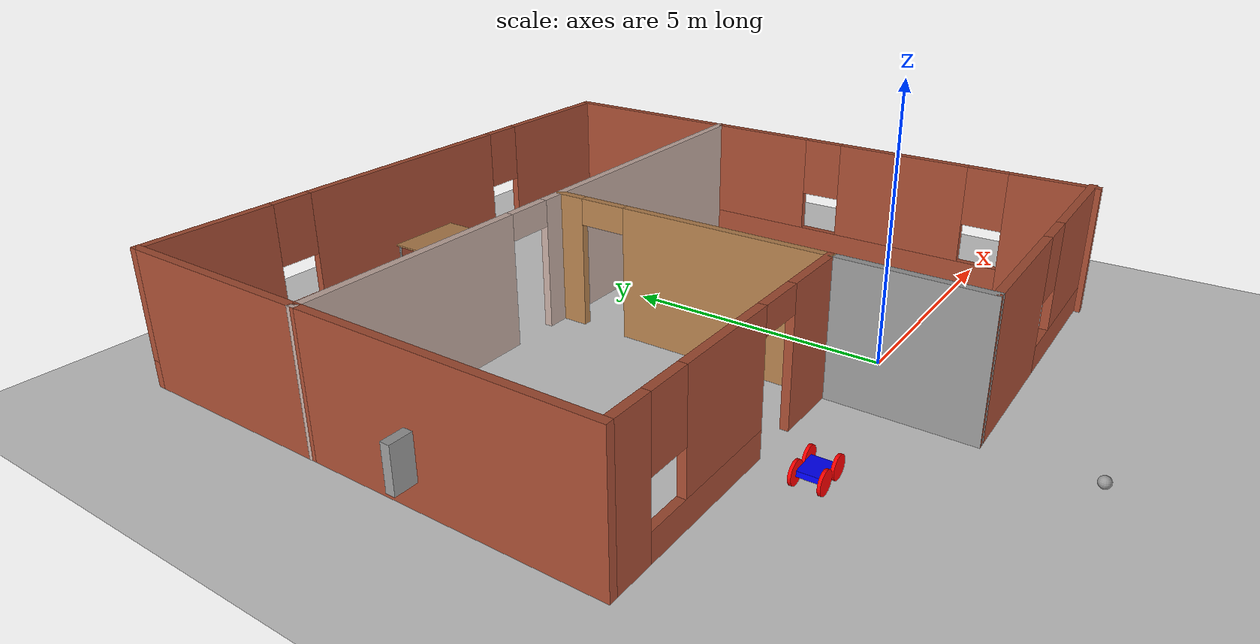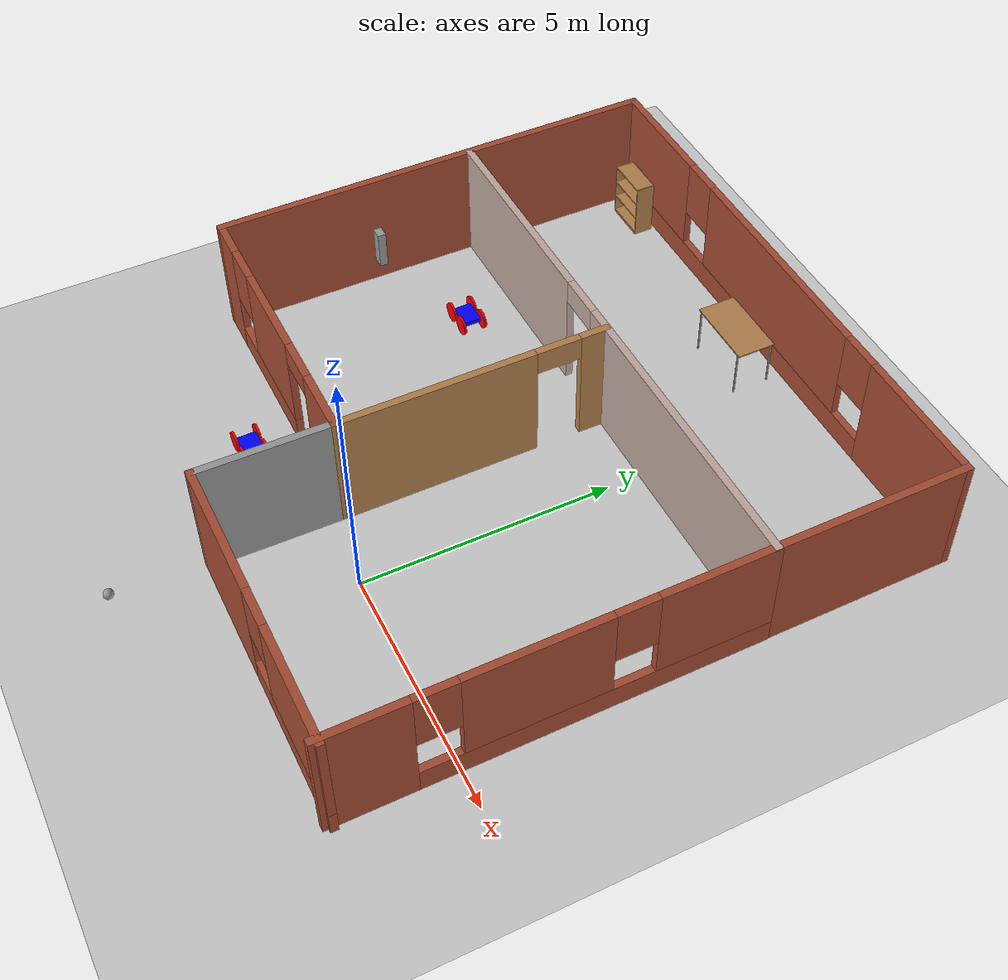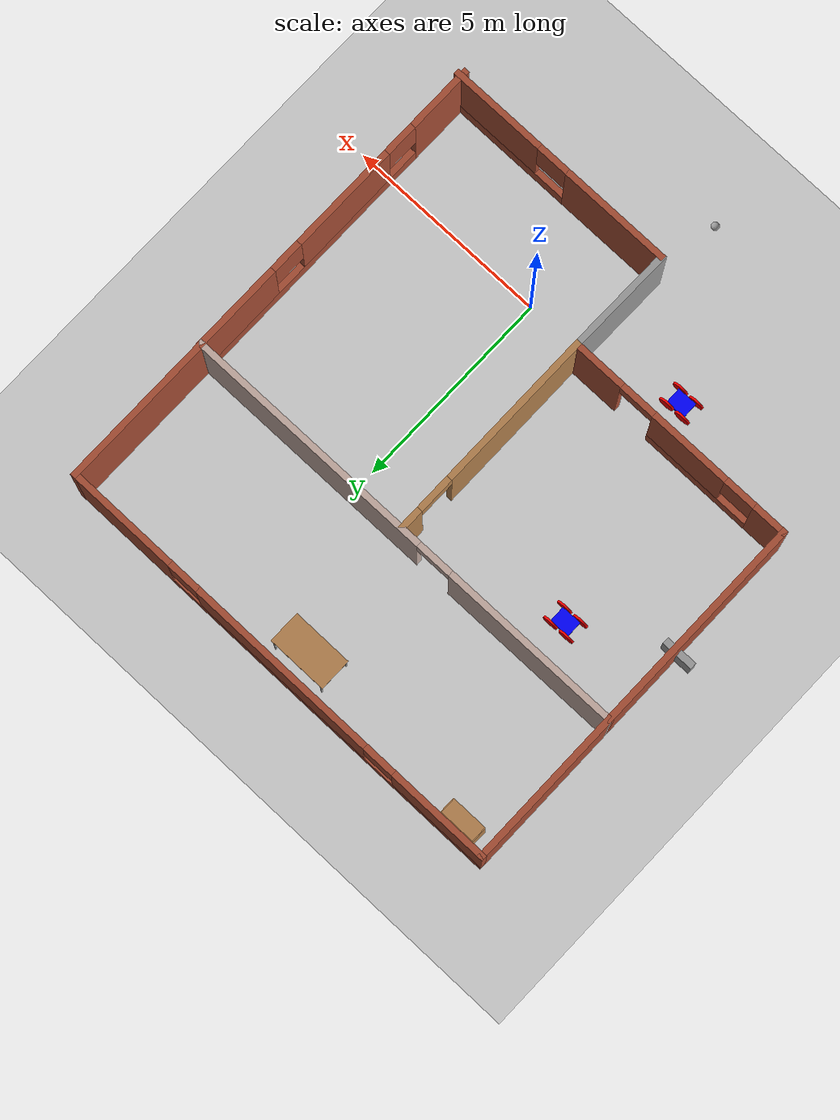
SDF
<sdf version="1.6">
 <world name="default">
  <plugin name="welcome_message" filename="libwelcome_message.so"/>
  <light name="sun" type="directional">
   <pose>0 0 10 0 -0 0</pose>
   <diffuse>0.8 0.8 0.8 1</diffuse>
   <specular>0.2 0.2 0.2 1</specular>
   <attenuation>
    <range>1000</range>
    <constant>0.9</constant>
    <linear>0.01</linear>
    <quadratic>0.001</quadratic>
   </attenuation>
   <direction>-0.5 0.1 -0.9</direction>
  </light>
  <model name="ground_plane">
   <static>1</static>
   <link name="link">
    <collision name="collision">
     <geometry><plane><normal>0 0 1</normal><size>100 100</size></plane></geometry>
     <surface>
      <contact><collide_bitmask>65535</collide_bitmask></contact>
      <friction><ode><mu>100</mu><mu2>50</mu2></ode></friction>
     </surface>
    </collision>
    <visual name="visual">
     <cast_shadows>0</cast_shadows>
     <geometry><plane><normal>0 0 1</normal><size>100 100</size></plane></geometry>
     <material>
      <script><uri>file://media/materials/scripts/gazebo.material</uri><name>Gazebo/Grey</name></script>
     </material>
    </visual>
   </link>
  </model>
  <gravity>0 0 -9.8</gravity>
  <magnetic_field>6e-06 2.3e-05 -4.2e-05</magnetic_field>
  <atmosphere type="adiabatic"/>
  <physics name="default_physics" default="0" type="ode">
   <max_step_size>0.001</max_step_size>
   <real_time_factor>1</real_time_factor>
   <real_time_update_rate>1000</real_time_update_rate>
  </physics>
  <scene><ambient>0.4 0.4 0.4 1</ambient><background>0.7 0.7 0.7 1</background><shadows>1</shadows></scene>
  <spherical_coordinates>
   <surface_model>EARTH_WGS84</surface_model>
   <latitude_deg>0</latitude_deg>
   <longitude_deg>0</longitude_deg>
   <elevation>0</elevation>
   <heading_deg>0</heading_deg>
  </spherical_coordinates>
  <model name="house3">
   <pose>-1.57892 3.61214 0 0 -0 0</pose>
   <link name="Wall_13">
    <collision name="Wall_13_Collision">
     <geometry><box><size>4 0.15 2.5</size></box></geometry>
     <pose>0 0 1.25 0 -0 0</pose>
    </collision>
    <visual name="Wall_13_Visual">
     <pose>0 0 1.25 0 -0 0</pose>
     <geometry><box><size>4 0.15 2.5</size></box></geometry>
     <material>
      <script><uri>file://media/materials/scripts/gazebo.material</uri><name>Gazebo/Bricks</name></script>
      <ambient>1 1 1 1</ambient>
     </material>
     <meta><layer>0</layer></meta>
    </visual>
    <pose>-5.84236 4.02705 0 0 -0 -1.5708</pose>
   </link>
   <link name="Wall_14">
    <pose>-0.042357 2.12498 0 0 -0 0.003953</pose>
    <visual name="Wall_14_Visual_0">
     <pose>-3.60865 0 1.25 0 -0 0</pose>
     <geometry><box><size>4.53279 0.15 2.5</size></box></geometry>
     <material>
      <script><uri>file://media/materials/scripts/gazebo.material</uri><name>Gazebo/Grey</name></script>
      <ambient>0.760784 0.662745 0.627451 1</ambient>
     </material>
     <meta><layer>0</layer></meta>
    </visual>
    <collision name="Wall_14_Collision_0">
     <geometry><box><size>4.53279 0.15 2.5</size></box></geometry>
     <pose>-3.60865 0 1.25 0 -0 0</pose>
    </collision>
    <visual name="Wall_14_Visual_1">
     <pose>2.7164 0 1.25 0 -0 0</pose>
     <geometry><box><size>6.3173 0.15 2.5</size></box></geometry>
     <material>
      <script><uri>file://media/materials/scripts/gazebo.material</uri><name>Gazebo/Grey</name></script>
      <ambient>0.760784 0.662745 0.627451 1</ambient>
     </material>
     <meta><layer>0</layer></meta>
    </visual>
    <collision name="Wall_14_Collision_1">
     <geometry><box><size>6.3173 0.15 2.5</size></box></geometry>
     <pose>2.7164 0 1.25 0 -0 0</pose>
    </collision>
    <visual name="Wall_14_Visual_2">
     <pose>-0.892252 0 2.25 0 -0 0</pose>
     <geometry><box><size>0.9 0.15 0.5</size></box></geometry>
     <material>
      <script><uri>file://media/materials/scripts/gazebo.material</uri><name>Gazebo/Grey</name></script>
      <ambient>0.760784 0.662745 0.627451 1</ambient>
     </material>
     <meta><layer>0</layer></meta>
    </visual>
    <collision name="Wall_14_Collision_2">
     <geometry><box><size>0.9 0.15 0.5</size></box></geometry>
     <pose>-0.892252 0 2.25 0 -0 0</pose>
    </collision>
   </link>
   <link name="Wall_15">
    <collision name="Wall_15_Collision">
     <geometry><box><size>3.95422 0.15 2.5</size></box></geometry>
     <pose>0 0 1.25 0 -0 0</pose>
    </collision>
    <visual name="Wall_15_Visual">
     <pose>0 0 1.25 0 -0 0</pose>
     <geometry><box><size>3.95422 0.15 2.5</size></box></geometry>
     <material>
      <script><uri>file://media/materials/scripts/gazebo.material</uri><name>Gazebo/Bricks</name></script>
      <ambient>1 1 1 1</ambient>
     </material>
     <meta><layer>0</layer></meta>
    </visual>
    <pose>5.75764 4.04998 0 0 -0 1.5708</pose>
   </link>
   <link name="Wall_16">
    <pose>-0.042357 5.95205 0 0 -0 3.14159</pose>
    <visual name="Wall_16_Visual_0">
     <pose>-4.46306 0 1.25 0 -0 0</pose>
     <geometry><box><size>2.82388 0.15 2.5</size></box></geometry>
     <material>
      <script><uri>file://media/materials/scripts/gazebo.material</uri><name>Gazebo/Bricks</name></script>
      <ambient>1 1 1 1</ambient>
     </material>
     <meta><layer>0</layer></meta>
    </visual>
    <collision name="Wall_16_Collision_0">
     <geometry><box><size>2.82388 0.15 2.5</size></box></geometry>
     <pose>-4.46306 0 1.25 0 -0 0</pose>
    </collision>
    <visual name="Wall_16_Visual_1">
     <pose>1.41194 0 0.25 0 -0 0</pose>
     <geometry><box><size>8.92612 0.15 0.5</size></box></geometry>
     <material>
      <script><uri>file://media/materials/scripts/gazebo.material</uri><name>Gazebo/Bricks</name></script>
      <ambient>1 1 1 1</ambient>
     </material>
     <meta><layer>0</layer></meta>
    </visual>
    <collision name="Wall_16_Collision_1">
     <geometry><box><size>8.92612 0.15 0.5</size></box></geometry>
     <pose>1.41194 0 0.25 0 -0 0</pose>
    </collision>
    <visual name="Wall_16_Visual_2">
     <pose>0.137177 0 1.5 0 -0 0</pose>
     <geometry><box><size>4.7766 0.15 2</size></box></geometry>
     <material>
      <script><uri>file://media/materials/scripts/gazebo.material</uri><name>Gazebo/Bricks</name></script>
      <ambient>1 1 1 1</ambient>
     </material>
     <meta><layer>0</layer></meta>
    </visual>
    <collision name="Wall_16_Collision_2">
     <geometry><box><size>4.7766 0.15 2</size></box></geometry>
     <pose>0.137177 0 1.5 0 -0 0</pose>
    </collision>
    <visual name="Wall_16_Visual_3">
     <pose>4.60024 0 1.5 0 -0 0</pose>
     <geometry><box><size>2.54953 0.15 2</size></box></geometry>
     <material>
      <script><uri>file://media/materials/scripts/gazebo.material</uri><name>Gazebo/Bricks</name></script>
      <ambient>1 1 1 1</ambient>
     </material>
     <meta><layer>0</layer></meta>
    </visual>
    <collision name="Wall_16_Collision_3">
     <geometry><box><size>2.54953 0.15 2</size></box></geometry>
     <pose>4.60024 0 1.5 0 -0 0</pose>
    </collision>
    <visual name="Wall_16_Visual_4">
     <pose>-2.65112 0 1.9 0 -0 0</pose>
     <geometry><box><size>0.8 0.15 1.2</size></box></geometry>
     <material>
      <script><uri>file://media/materials/scripts/gazebo.material</uri><name>Gazebo/Bricks</name></script>
      <ambient>1 1 1 1</ambient>
     </material>
     <meta><layer>0</layer></meta>
    </visual>
    <collision name="Wall_16_Collision_4">
     <geometry><box><size>0.8 0.15 1.2</size></box></geometry>
     <pose>-2.65112 0 1.9 0 -0 0</pose>
    </collision>
    <visual name="Wall_16_Visual_5">
     <pose>2.92548 0 1.9 0 -0 0</pose>
     <geometry><box><size>0.8 0.15 1.2</size></box></geometry>
     <material>
      <script><uri>file://media/materials/scripts/gazebo.material</uri><name>Gazebo/Bricks</name></script>
      <ambient>1 1 1 1</ambient>
     </material>
     <meta><layer>0</layer></meta>
    </visual>
    <collision name="Wall_16_Collision_5">
     <geometry><box><size>0.8 0.15 1.2</size></box></geometry>
     <pose>2.92548 0 1.9 0 -0 0</pose>
    </collision>
   </link>
   <link name="Wall_18">
    <collision name="Wall_18_Collision">
     <geometry><box><size>5.5 0.15 2.5</size></box></geometry>
     <pose>0 0 1.25 0 -0 0</pose>
    </collision>
    <visual name="Wall_18_Visual">
     <pose>0 0 1.25 0 -0 0</pose>
     <geometry><box><size>5.5 0.15 2.5</size></box></geometry>
     <material>
      <script><uri>file://media/materials/scripts/gazebo.material</uri><name>Gazebo/Bricks</name></script>
      <ambient>1 1 1 1</ambient>
     </material>
     <meta><layer>0</layer></meta>
    </visual>
    <pose>-5.84236 -0.572945 0 0 -0 -1.5708</pose>
   </link>
   <link name="Wall_19">
    <pose>-2.91736 -3.24794 0 0 -0 0</pose>
    <visual name="Wall_19_Visual_0">
     <pose>-2.55833 0 1.25 0 -0 0</pose>
     <geometry><box><size>0.883347 0.15 2.5</size></box></geometry>
     <material>
      <script><uri>file://media/materials/scripts/gazebo.material</uri><name>Gazebo/Bricks</name></script>
      <ambient>0.760784 0.662745 0.627451 1</ambient>
     </material>
     <meta><layer>0</layer></meta>
    </visual>
    <collision name="Wall_19_Collision_0">
     <geometry><box><size>0.883347 0.15 2.5</size></box></geometry>
     <pose>-2.55833 0 1.25 0 -0 0</pose>
    </collision>
    <visual name="Wall_19_Visual_1">
     <pose>2.31276 0 1.25 0 -0 0</pose>
     <geometry><box><size>1.37448 0.15 2.5</size></box></geometry>
     <material>
      <script><uri>file://media/materials/scripts/gazebo.material</uri><name>Gazebo/Bricks</name></script>
      <ambient>0.760784 0.662745 0.627451 1</ambient>
     </material>
     <meta><layer>0</layer></meta>
    </visual>
    <collision name="Wall_19_Collision_1">
     <geometry><box><size>1.37448 0.15 2.5</size></box></geometry>
     <pose>2.31276 0 1.25 0 -0 0</pose>
    </collision>
    <visual name="Wall_19_Visual_2">
     <pose>-0.695569 0 0.25 0 -0 0</pose>
     <geometry><box><size>2.84217 0.15 0.5</size></box></geometry>
     <material>
      <script><uri>file://media/materials/scripts/gazebo.material</uri><name>Gazebo/Bricks</name></script>
      <ambient>0.760784 0.662745 0.627451 1</ambient>
     </material>
     <meta><layer>0</layer></meta>
    </visual>
    <collision name="Wall_19_Collision_2">
     <geometry><box><size>2.84217 0.15 0.5</size></box></geometry>
     <pose>-0.695569 0 0.25 0 -0 0</pose>
    </collision>
    <visual name="Wall_19_Visual_3">
     <pose>-0.295569 0 1.5 0 -0 0</pose>
     <geometry><box><size>2.04217 0.15 2</size></box></geometry>
     <material>
      <script><uri>file://media/materials/scripts/gazebo.material</uri><name>Gazebo/Bricks</name></script>
      <ambient>0.760784 0.662745 0.627451 1</ambient>
     </material>
     <meta><layer>0</layer></meta>
    </visual>
    <collision name="Wall_19_Collision_3">
     <geometry><box><size>2.04217 0.15 2</size></box></geometry>
     <pose>-0.295569 0 1.5 0 -0 0</pose>
    </collision>
    <visual name="Wall_19_Visual_4">
     <pose>-1.71665 0 1.9 0 -0 0</pose>
     <geometry><box><size>0.8 0.15 1.2</size></box></geometry>
     <material>
      <script><uri>file://media/materials/scripts/gazebo.material</uri><name>Gazebo/Bricks</name></script>
      <ambient>0.760784 0.662745 0.627451 1</ambient>
     </material>
     <meta><layer>0</layer></meta>
    </visual>
    <collision name="Wall_19_Collision_4">
     <geometry><box><size>0.8 0.15 1.2</size></box></geometry>
     <pose>-1.71665 0 1.9 0 -0 0</pose>
    </collision>
    <visual name="Wall_19_Visual_5">
     <pose>1.17552 0 2.25 0 -0 0</pose>
     <geometry><box><size>0.9 0.15 0.5</size></box></geometry>
     <material>
      <script><uri>file://media/materials/scripts/gazebo.material</uri><name>Gazebo/Bricks</name></script>
      <ambient>0.760784 0.662745 0.627451 1</ambient>
     </material>
     <meta><layer>0</layer></meta>
    </visual>
    <collision name="Wall_19_Collision_5">
     <geometry><box><size>0.9 0.15 0.5</size></box></geometry>
     <pose>1.17552 0 2.25 0 -0 0</pose>
    </collision>
   </link>
   <link name="Wall_20">
    <pose>0.007643 -0.572945 0 0 -0 1.5708</pose>
    <visual name="Wall_20_Visual_0">
     <pose>-0.752414 0 1.25 0 -0 0</pose>
     <geometry><box><size>3.99517 0.15 2.5</size></box></geometry>
     <material>
      <script><uri>file://media/materials/scripts/gazebo.material</uri><name>Gazebo/Wood</name></script>
      <ambient>1 1 1 1</ambient>
     </material>
     <meta><layer>0</layer></meta>
    </visual>
    <collision name="Wall_20_Collision_0">
     <geometry><box><size>3.99517 0.15 2.5</size></box></geometry>
     <pose>-0.752414 0 1.25 0 -0 0</pose>
    </collision>
    <visual name="Wall_20_Visual_1">
     <pose>2.44759 0 1.25 0 -0 0</pose>
     <geometry><box><size>0.604828 0.15 2.5</size></box></geometry>
     <material>
      <script><uri>file://media/materials/scripts/gazebo.material</uri><name>Gazebo/Wood</name></script>
      <ambient>1 1 1 1</ambient>
     </material>
     <meta><layer>0</layer></meta>
    </visual>
    <collision name="Wall_20_Collision_1">
     <geometry><box><size>0.604828 0.15 2.5</size></box></geometry>
     <pose>2.44759 0 1.25 0 -0 0</pose>
    </collision>
    <visual name="Wall_20_Visual_2">
     <pose>1.69517 0 2.25 0 -0 0</pose>
     <geometry><box><size>0.9 0.15 0.5</size></box></geometry>
     <material>
      <script><uri>file://media/materials/scripts/gazebo.material</uri><name>Gazebo/Wood</name></script>
      <ambient>1 1 1 1</ambient>
     </material>
     <meta><layer>0</layer></meta>
    </visual>
    <collision name="Wall_20_Collision_2">
     <geometry><box><size>0.9 0.15 0.5</size></box></geometry>
     <pose>1.69517 0 2.25 0 -0 0</pose>
    </collision>
   </link>
   <link name="Wall_22">
    <collision name="Wall_22_Collision">
     <geometry><box><size>2.75 0.15 2.5</size></box></geometry>
     <pose>0 0 1.25 0 -0 0</pose>
    </collision>
    <visual name="Wall_22_Visual">
     <pose>0 0 1.25 0 -0 0</pose>
     <geometry><box><size>2.75 0.15 2.5</size></box></geometry>
     <material>
      <script><uri>file://media/materials/scripts/gazebo.material</uri><name>Gazebo/Grey</name></script>
      <ambient>1 1 1 1</ambient>
     </material>
     <meta><layer>0</layer></meta>
    </visual>
    <pose>-0.007347 -4.54794 0 0 -0 -1.58233</pose>
   </link>
   <link name="Wall_24">
    <pose>5.76911 -1.90209 0 0 -0 1.5708</pose>
    <visual name="Wall_24_Visual_0">
     <pose>-3.28231 0 1.25 0 -0 0</pose>
     <geometry><box><size>1.68538 0.15 2.5</size></box></geometry>
     <material>
      <script><uri>file://media/materials/scripts/gazebo.material</uri><name>Gazebo/Bricks</name></script>
      <ambient>1 1 1 1</ambient>
     </material>
     <meta><layer>0</layer></meta>
    </visual>
    <collision name="Wall_24_Collision_0">
     <geometry><box><size>1.68538 0.15 2.5</size></box></geometry>
     <pose>-3.28231 0 1.25 0 -0 0</pose>
    </collision>
    <visual name="Wall_24_Visual_1">
     <pose>0.842689 0 0.25 0 -0 0</pose>
     <geometry><box><size>6.56462 0.15 0.5</size></box></geometry>
     <material>
      <script><uri>file://media/materials/scripts/gazebo.material</uri><name>Gazebo/Bricks</name></script>
      <ambient>1 1 1 1</ambient>
     </material>
     <meta><layer>0</layer></meta>
    </visual>
    <collision name="Wall_24_Collision_1">
     <geometry><box><size>6.56462 0.15 0.5</size></box></geometry>
     <pose>0.842689 0 0.25 0 -0 0</pose>
    </collision>
    <visual name="Wall_24_Visual_2">
     <pose>-0.288435 0 1.5 0 -0 0</pose>
     <geometry><box><size>2.70237 0.15 2</size></box></geometry>
     <material>
      <script><uri>file://media/materials/scripts/gazebo.material</uri><name>Gazebo/Bricks</name></script>
      <ambient>1 1 1 1</ambient>
     </material>
     <meta><layer>0</layer></meta>
    </visual>
    <collision name="Wall_24_Collision_2">
     <geometry><box><size>2.70237 0.15 2</size></box></geometry>
     <pose>-0.288435 0 1.5 0 -0 0</pose>
    </collision>
    <visual name="Wall_24_Visual_3">
     <pose>2.99388 0 1.5 0 -0 0</pose>
     <geometry><box><size>2.26225 0.15 2</size></box></geometry>
     <material>
      <script><uri>file://media/materials/scripts/gazebo.material</uri><name>Gazebo/Bricks</name></script>
      <ambient>1 1 1 1</ambient>
     </material>
     <meta><layer>0</layer></meta>
    </visual>
    <collision name="Wall_24_Collision_3">
     <geometry><box><size>2.26225 0.15 2</size></box></geometry>
     <pose>2.99388 0 1.5 0 -0 0</pose>
    </collision>
    <visual name="Wall_24_Visual_4">
     <pose>-2.03962 0 1.9 0 -0 0</pose>
     <geometry><box><size>0.8 0.15 1.2</size></box></geometry>
     <material>
      <script><uri>file://media/materials/scripts/gazebo.material</uri><name>Gazebo/Bricks</name></script>
      <ambient>1 1 1 1</ambient>
     </material>
     <meta><layer>0</layer></meta>
    </visual>
    <collision name="Wall_24_Collision_4">
     <geometry><box><size>0.8 0.15 1.2</size></box></geometry>
     <pose>-2.03962 0 1.9 0 -0 0</pose>
    </collision>
    <visual name="Wall_24_Visual_5">
     <pose>1.46275 0 1.9 0 -0 0</pose>
     <geometry><box><size>0.8 0.15 1.2</size></box></geometry>
     <material>
      <script><uri>file://media/materials/scripts/gazebo.material</uri><name>Gazebo/Bricks</name></script>
      <ambient>1 1 1 1</ambient>
     </material>
     <meta><layer>0</layer></meta>
    </visual>
    <collision name="Wall_24_Collision_5">
     <geometry><box><size>0.8 0.15 1.2</size></box></geometry>
     <pose>1.46275 0 1.9 0 -0 0</pose>
    </collision>
   </link>
   <link name="Wall_26">
    <pose>2.91765 -5.84794 0 0 -0 0</pose>
    <visual name="Wall_26_Visual_0">
     <pose>-1.61642 0 1.25 0 -0 0</pose>
     <geometry><box><size>2.76716 0.15 2.5</size></box></geometry>
     <material>
      <script><uri>file://media/materials/scripts/gazebo.material</uri><name>Gazebo/Bricks</name></script>
      <ambient>1 1 1 1</ambient>
     </material>
     <meta><layer>0</layer></meta>
    </visual>
    <collision name="Wall_26_Collision_0">
     <geometry><box><size>2.76716 0.15 2.5</size></box></geometry>
     <pose>-1.61642 0 1.25 0 -0 0</pose>
    </collision>
    <visual name="Wall_26_Visual_1">
     <pose>1.38358 0 0.25 0 -0 0</pose>
     <geometry><box><size>3.23284 0.15 0.5</size></box></geometry>
     <material>
      <script><uri>file://media/materials/scripts/gazebo.material</uri><name>Gazebo/Bricks</name></script>
      <ambient>1 1 1 1</ambient>
     </material>
     <meta><layer>0</layer></meta>
    </visual>
    <collision name="Wall_26_Collision_1">
     <geometry><box><size>3.23284 0.15 0.5</size></box></geometry>
     <pose>1.38358 0 0.25 0 -0 0</pose>
    </collision>
    <visual name="Wall_26_Visual_2">
     <pose>1.78358 0 1.5 0 -0 0</pose>
     <geometry><box><size>2.43284 0.15 2</size></box></geometry>
     <material>
      <script><uri>file://media/materials/scripts/gazebo.material</uri><name>Gazebo/Bricks</name></script>
      <ambient>1 1 1 1</ambient>
     </material>
     <meta><layer>0</layer></meta>
    </visual>
    <collision name="Wall_26_Collision_2">
     <geometry><box><size>2.43284 0.15 2</size></box></geometry>
     <pose>1.78358 0 1.5 0 -0 0</pose>
    </collision>
    <visual name="Wall_26_Visual_3">
     <pose>0.167161 0 1.9 0 -0 0</pose>
     <geometry><box><size>0.8 0.15 1.2</size></box></geometry>
     <material>
      <script><uri>file://media/materials/scripts/gazebo.material</uri><name>Gazebo/Bricks</name></script>
      <ambient>1 1 1 1</ambient>
     </material>
     <meta><layer>0</layer></meta>
    </visual>
    <collision name="Wall_26_Collision_3">
     <geometry><box><size>0.8 0.15 1.2</size></box></geometry>
     <pose>0.167161 0 1.9 0 -0 0</pose>
    </collision>
   </link>
   <link name="Window_4">
    <collision name="Window_4_Collision">
     <geometry><box><size>0.8 0.17 0.8</size></box></geometry>
     <pose>0 0 0.4 0 -0 0</pose>
    </collision>
    <visual name="Window_4_Visual">
     <pose>0 0 0.4 0 -0 0</pose>
     <geometry><box><size>0.8 0.17 0.8</size></box></geometry>
     <material>
      <script><uri>file://media/materials/scripts/gazebo.material</uri><name>Gazebo/Grey</name></script>
     </material>
    </visual>
    <pose>-5.92615 -0.065298 0.5 0 -0 0</pose>
   </link>
   <static>1</static>
  </model>
  <model name="new_robot">
   <link name="link_0">
    <inertial>
     <mass>1</mass>
     <inertia>
      <ixx>0.166667</ixx>
      <ixy>0</ixy>
      <ixz>0</ixz>
      <iyy>0.166667</iyy>
      <iyz>0</iyz>
      <izz>0.166667</izz>
     </inertia>
    </inertial>
    <pose>0.1 -0 0 0 -0 0</pose>
    <visual name="visual">
     <geometry><box><size>0.5 0.4 0.1</size></box></geometry>
     <material>
      <lighting>1</lighting>
      <script><uri>file://media/materials/scripts/gazebo.material</uri><name>Gazebo/Grey</name></script>
      <shader type="pixel"><normal_map>__default__</normal_map></shader>
      <ambient>0 0 1 1</ambient>
      <diffuse>0.7 0.7 0.7 1</diffuse>
      <specular>0.01 0.01 0.01 1</specular>
      <emissive>0 0 0 1</emissive>
     </material>
    </visual>
    <collision name="collision">
     <geometry><box><size>0.5 0.4 0.1</size></box></geometry>
     <surface>
      <friction>
       <ode><mu>1</mu><mu2>1</mu2><fdir1>0 0 0</fdir1><slip1>0</slip1><slip2>0</slip2></ode>
       <torsional>
        <coefficient>1</coefficient>
        <patch_radius>0</patch_radius>
        <surface_radius>0</surface_radius>
        <use_patch_radius>1</use_patch_radius>
        <ode><slip>0</slip></ode>
       </torsional>
      </friction>
      <bounce><restitution_coefficient>0</restitution_coefficient><threshold>1e+06</threshold></bounce>
      <contact>
       <collide_without_contact>0</collide_without_contact>
       <collide_without_contact_bitmask>1</collide_without_contact_bitmask>
       <collide_bitmask>1</collide_bitmask>
       <ode>
        <soft_cfm>0</soft_cfm>
        <soft_erp>0.2</soft_erp>
        <kp>1e+13</kp>
        <kd>1</kd>
        <max_vel>0.01</max_vel>
        <min_depth>0</min_depth>
       </ode>
       <bullet>
        <split_impulse>1</split_impulse>
        <split_impulse_penetration_threshold>-0.01</split_impulse_penetration_threshold>
        <soft_cfm>0</soft_cfm>
        <soft_erp>0.2</soft_erp>
        <kp>1e+13</kp>
        <kd>1</kd>
       </bullet>
      </contact>
     </surface>
    </collision>
   </link>
   <link name="link_1_clone">
    <inertial>
     <mass>1</mass>
     <inertia><ixx>0.145833</ixx><ixy>0</ixy><ixz>0</ixz><iyy>0.145833</iyy><iyz>0</iyz><izz>0.125</izz></inertia>
    </inertial>
    <pose>0.325 0.225019 0 1.5707 -0 0</pose>
    <visual name="visual">
     <geometry><cylinder><radius>0.2</radius><length>0.05</length></cylinder></geometry>
     <material>
      <lighting>1</lighting>
      <script><uri>file://media/materials/scripts/gazebo.material</uri><name>Gazebo/Grey</name></script>
      <shader type="pixel"><normal_map>__default__</normal_map></shader>
      <ambient>1 0 0 1</ambient>
      <diffuse>0.7 0.7 0.7 1</diffuse>
      <specular>0.01 0.01 0.01 1</specular>
      <emissive>0 0 0 1</emissive>
     </material>
    </visual>
    <collision name="collision">
     <geometry><cylinder><radius>0.2</radius><length>0.05</length></cylinder></geometry>
     <surface>
      <friction>
       <ode><mu>1</mu><mu2>1</mu2><fdir1>0 0 0</fdir1><slip1>0</slip1><slip2>0</slip2></ode>
       <torsional>
        <coefficient>1</coefficient>
        <patch_radius>0</patch_radius>
        <surface_radius>0</surface_radius>
        <use_patch_radius>1</use_patch_radius>
        <ode><slip>0</slip></ode>
       </torsional>
      </friction>
      <bounce><restitution_coefficient>0</restitution_coefficient><threshold>1e+06</threshold></bounce>
      <contact>
       <collide_without_contact>0</collide_without_contact>
       <collide_without_contact_bitmask>1</collide_without_contact_bitmask>
       <collide_bitmask>1</collide_bitmask>
       <ode>
        <soft_cfm>0</soft_cfm>
        <soft_erp>0.2</soft_erp>
        <kp>1e+13</kp>
        <kd>1</kd>
        <max_vel>0.01</max_vel>
        <min_depth>0</min_depth>
       </ode>
       <bullet>
        <split_impulse>1</split_impulse>
        <split_impulse_penetration_threshold>-0.01</split_impulse_penetration_threshold>
        <soft_cfm>0</soft_cfm>
        <soft_erp>0.2</soft_erp>
        <kp>1e+13</kp>
        <kd>1</kd>
       </bullet>
      </contact>
     </surface>
    </collision>
   </link>
   <link name="link_1_clone_0">
    <inertial>
     <mass>1</mass>
     <inertia><ixx>0.145833</ixx><ixy>0</ixy><ixz>0</ixz><iyy>0.145833</iyy><iyz>0</iyz><izz>0.125</izz></inertia>
    </inertial>
    <pose>-0.125 -0.225019 0 1.5707 -0 0</pose>
    <visual name="visual">
     <geometry><cylinder><radius>0.2</radius><length>0.05</length></cylinder></geometry>
     <material>
      <lighting>1</lighting>
      <script><uri>file://media/materials/scripts/gazebo.material</uri><name>Gazebo/Grey</name></script>
      <shader type="pixel"><normal_map>__default__</normal_map></shader>
      <ambient>1 0 0 1</ambient>
      <diffuse>0.7 0.7 0.7 1</diffuse>
      <specular>0.01 0.01 0.01 1</specular>
      <emissive>0 0 0 1</emissive>
     </material>
    </visual>
    <collision name="collision">
     <geometry><cylinder><radius>0.2</radius><length>0.05</length></cylinder></geometry>
     <surface>
      <friction>
       <ode><mu>1</mu><mu2>1</mu2><fdir1>0 0 0</fdir1><slip1>0</slip1><slip2>0</slip2></ode>
       <torsional>
        <coefficient>1</coefficient>
        <patch_radius>0</patch_radius>
        <surface_radius>0</surface_radius>
        <use_patch_radius>1</use_patch_radius>
        <ode><slip>0</slip></ode>
       </torsional>
      </friction>
      <bounce><restitution_coefficient>0</restitution_coefficient><threshold>1e+06</threshold></bounce>
      <contact>
       <collide_without_contact>0</collide_without_contact>
       <collide_without_contact_bitmask>1</collide_without_contact_bitmask>
       <collide_bitmask>1</collide_bitmask>
       <ode>
        <soft_cfm>0</soft_cfm>
        <soft_erp>0.2</soft_erp>
        <kp>1e+13</kp>
        <kd>1</kd>
        <max_vel>0.01</max_vel>
        <min_depth>0</min_depth>
       </ode>
       <bullet>
        <split_impulse>1</split_impulse>
        <split_impulse_penetration_threshold>-0.01</split_impulse_penetration_threshold>
        <soft_cfm>0</soft_cfm>
        <soft_erp>0.2</soft_erp>
        <kp>1e+13</kp>
        <kd>1</kd>
       </bullet>
      </contact>
     </surface>
    </collision>
   </link>
   <link name="link_1_clone_1">
    <inertial>
     <mass>1</mass>
     <inertia><ixx>0.145833</ixx><ixy>0</ixy><ixz>0</ixz><iyy>0.145833</iyy><iyz>0</iyz><izz>0.125</izz></inertia>
    </inertial>
    <pose>0.325 -0.225019 0 1.5707 -0 0</pose>
    <visual name="visual">
     <geometry><cylinder><radius>0.2</radius><length>0.05</length></cylinder></geometry>
     <material>
      <lighting>1</lighting>
      <script><uri>file://media/materials/scripts/gazebo.material</uri><name>Gazebo/Grey</name></script>
      <shader type="pixel"><normal_map>__default__</normal_map></shader>
      <ambient>1 0 0 1</ambient>
      <diffuse>0.7 0.7 0.7 1</diffuse>
      <specular>0.01 0.01 0.01 1</specular>
      <emissive>0 0 0 1</emissive>
     </material>
    </visual>
    <collision name="collision">
     <geometry><cylinder><radius>0.2</radius><length>0.05</length></cylinder></geometry>
     <surface>
      <friction>
       <ode><mu>1</mu><mu2>1</mu2><fdir1>0 0 0</fdir1><slip1>0</slip1><slip2>0</slip2></ode>
       <torsional>
        <coefficient>1</coefficient>
        <patch_radius>0</patch_radius>
        <surface_radius>0</surface_radius>
        <use_patch_radius>1</use_patch_radius>
        <ode><slip>0</slip></ode>
       </torsional>
      </friction>
      <bounce><restitution_coefficient>0</restitution_coefficient><threshold>1e+06</threshold></bounce>
      <contact>
       <collide_without_contact>0</collide_without_contact>
       <collide_without_contact_bitmask>1</collide_without_contact_bitmask>
       <collide_bitmask>1</collide_bitmask>
       <ode>
        <soft_cfm>0</soft_cfm>
        <soft_erp>0.2</soft_erp>
        <kp>1e+13</kp>
        <kd>1</kd>
        <max_vel>0.01</max_vel>
        <min_depth>0</min_depth>
       </ode>
       <bullet>
        <split_impulse>1</split_impulse>
        <split_impulse_penetration_threshold>-0.01</split_impulse_penetration_threshold>
        <soft_cfm>0</soft_cfm>
        <soft_erp>0.2</soft_erp>
        <kp>1e+13</kp>
        <kd>1</kd>
       </bullet>
      </contact>
     </surface>
    </collision>
   </link>
   <link name="link_1_clone_clone">
    <inertial>
     <mass>1</mass>
     <inertia><ixx>0.145833</ixx><ixy>0</ixy><ixz>0</ixz><iyy>0.145833</iyy><iyz>0</iyz><izz>0.125</izz></inertia>
    </inertial>
    <pose>-0.125 0.225019 0 1.5707 -0 0</pose>
    <visual name="visual">
     <geometry><cylinder><radius>0.2</radius><length>0.05</length></cylinder></geometry>
     <material>
      <lighting>1</lighting>
      <script><uri>file://media/materials/scripts/gazebo.material</uri><name>Gazebo/Grey</name></script>
      <shader type="pixel"><normal_map>__default__</normal_map></shader>
      <ambient>1 0 0 1</ambient>
      <diffuse>0.7 0.7 0.7 1</diffuse>
      <specular>0.01 0.01 0.01 1</specular>
      <emissive>0 0 0 1</emissive>
     </material>
    </visual>
    <collision name="collision">
     <geometry><cylinder><radius>0.2</radius><length>0.05</length></cylinder></geometry>
     <surface>
      <friction>
       <ode><mu>1</mu><mu2>1</mu2><fdir1>0 0 0</fdir1><slip1>0</slip1><slip2>0</slip2></ode>
       <torsional>
        <coefficient>1</coefficient>
        <patch_radius>0</patch_radius>
        <surface_radius>0</surface_radius>
        <use_patch_radius>1</use_patch_radius>
        <ode><slip>0</slip></ode>
       </torsional>
      </friction>
      <bounce><restitution_coefficient>0</restitution_coefficient><threshold>1e+06</threshold></bounce>
      <contact>
       <collide_without_contact>0</collide_without_contact>
       <collide_without_contact_bitmask>1</collide_without_contact_bitmask>
       <collide_bitmask>1</collide_bitmask>
       <ode>
        <soft_cfm>0</soft_cfm>
        <soft_erp>0.2</soft_erp>
        <kp>1e+13</kp>
        <kd>1</kd>
        <max_vel>0.01</max_vel>
        <min_depth>0</min_depth>
       </ode>
       <bullet>
        <split_impulse>1</split_impulse>
        <split_impulse_penetration_threshold>-0.01</split_impulse_penetration_threshold>
        <soft_cfm>0</soft_cfm>
        <soft_erp>0.2</soft_erp>
        <kp>1e+13</kp>
        <kd>1</kd>
       </bullet>
      </contact>
     </surface>
    </collision>
   </link>
   <joint name="link_0_JOINT_0" type="revolute">
    <parent>link_0</parent>
    <child>link_1_clone</child>
    <axis>
     <xyz>0 0 1</xyz>
     <use_parent_model_frame>0</use_parent_model_frame>
     <limit>
      <lower>-1.79769e+308</lower>
      <upper>1.79769e+308</upper>
      <effort>-1</effort>
      <velocity>-1</velocity>
     </limit>
     <dynamics>
      <spring_reference>0</spring_reference>
      <spring_stiffness>0</spring_stiffness>
      <damping>0</damping>
     </dynamics>
    </axis>
    <physics>
     <ode><limit><cfm>0</cfm><erp>0.2</erp></limit><suspension><cfm>0</cfm><erp>0.2</erp></suspension></ode>
    </physics>
   </joint>
   <joint name="link_0_JOINT_1" type="revolute">
    <parent>link_0</parent>
    <child>link_1_clone_1</child>
    <axis>
     <xyz>0 0 1</xyz>
     <use_parent_model_frame>0</use_parent_model_frame>
     <limit>
      <lower>-1.79769e+308</lower>
      <upper>1.79769e+308</upper>
      <effort>-1</effort>
      <velocity>-1</velocity>
     </limit>
     <dynamics>
      <spring_reference>0</spring_reference>
      <spring_stiffness>0</spring_stiffness>
      <damping>0</damping>
     </dynamics>
    </axis>
    <physics>
     <ode><limit><cfm>0</cfm><erp>0.2</erp></limit><suspension><cfm>0</cfm><erp>0.2</erp></suspension></ode>
    </physics>
   </joint>
   <joint name="link_0_JOINT_2" type="revolute">
    <parent>link_0</parent>
    <child>link_1_clone_0</child>
    <axis>
     <xyz>0 0 1</xyz>
     <use_parent_model_frame>0</use_parent_model_frame>
     <limit>
      <lower>-1.79769e+308</lower>
      <upper>1.79769e+308</upper>
      <effort>-1</effort>
      <velocity>-1</velocity>
     </limit>
     <dynamics>
      <spring_reference>0</spring_reference>
      <spring_stiffness>0</spring_stiffness>
      <damping>0</damping>
     </dynamics>
    </axis>
    <physics>
     <ode><limit><cfm>0</cfm><erp>0.2</erp></limit><suspension><cfm>0</cfm><erp>0.2</erp></suspension></ode>
    </physics>
   </joint>
   <joint name="link_0_JOINT_4" type="revolute">
    <parent>link_0</parent>
    <child>link_1_clone_clone</child>
    <axis>
     <xyz>0 0 1</xyz>
     <use_parent_model_frame>0</use_parent_model_frame>
     <limit>
      <lower>-1.79769e+308</lower>
      <upper>1.79769e+308</upper>
      <effort>-1</effort>
      <velocity>-1</velocity>
     </limit>
     <dynamics>
      <spring_reference>0</spring_reference>
      <spring_stiffness>0</spring_stiffness>
      <damping>0</damping>
     </dynamics>
    </axis>
    <physics>
     <ode><limit><cfm>0</cfm><erp>0.2</erp></limit><suspension><cfm>0</cfm><erp>0.2</erp></suspension></ode>
    </physics>
   </joint>
   <static>0</static>
   <pose>-3.92896 -0.640037 0.200003 1e-06 1e-06 0.014873</pose>
  </model>
  <model name="new_robot_0">
   <link name="link_0">
    <inertial>
     <mass>1</mass>
     <inertia>
      <ixx>0.166667</ixx>
      <ixy>0</ixy>
      <ixz>0</ixz>
      <iyy>0.166667</iyy>
      <iyz>0</iyz>
      <izz>0.166667</izz>
     </inertia>
    </inertial>
    <pose>0.1 -0 0 0 -0 0</pose>
    <visual name="visual">
     <geometry><box><size>0.5 0.4 0.1</size></box></geometry>
     <material>
      <lighting>1</lighting>
      <script><uri>file://media/materials/scripts/gazebo.material</uri><name>Gazebo/Grey</name></script>
      <shader type="pixel"><normal_map>__default__</normal_map></shader>
      <ambient>0 0 1 1</ambient>
      <diffuse>0.7 0.7 0.7 1</diffuse>
      <specular>0.01 0.01 0.01 1</specular>
      <emissive>0 0 0 1</emissive>
     </material>
    </visual>
    <collision name="collision">
     <geometry><box><size>0.5 0.4 0.1</size></box></geometry>
     <surface>
      <friction>
       <ode><mu>1</mu><mu2>1</mu2><fdir1>0 0 0</fdir1><slip1>0</slip1><slip2>0</slip2></ode>
       <torsional>
        <coefficient>1</coefficient>
        <patch_radius>0</patch_radius>
        <surface_radius>0</surface_radius>
        <use_patch_radius>1</use_patch_radius>
        <ode><slip>0</slip></ode>
       </torsional>
      </friction>
      <bounce><restitution_coefficient>0</restitution_coefficient><threshold>1e+06</threshold></bounce>
      <contact>
       <collide_without_contact>0</collide_without_contact>
       <collide_without_contact_bitmask>1</collide_without_contact_bitmask>
       <collide_bitmask>1</collide_bitmask>
       <ode>
        <soft_cfm>0</soft_cfm>
        <soft_erp>0.2</soft_erp>
        <kp>1e+13</kp>
        <kd>1</kd>
        <max_vel>0.01</max_vel>
        <min_depth>0</min_depth>
       </ode>
       <bullet>
        <split_impulse>1</split_impulse>
        <split_impulse_penetration_threshold>-0.01</split_impulse_penetration_threshold>
        <soft_cfm>0</soft_cfm>
        <soft_erp>0.2</soft_erp>
        <kp>1e+13</kp>
        <kd>1</kd>
       </bullet>
      </contact>
     </surface>
    </collision>
   </link>
   <link name="link_1_clone">
    <inertial>
     <mass>1</mass>
     <inertia><ixx>0.145833</ixx><ixy>0</ixy><ixz>0</ixz><iyy>0.145833</iyy><iyz>0</iyz><izz>0.125</izz></inertia>
    </inertial>
    <pose>0.325 0.225019 0 1.5707 -0 0</pose>
    <visual name="visual">
     <geometry><cylinder><radius>0.2</radius><length>0.05</length></cylinder></geometry>
     <material>
      <lighting>1</lighting>
      <script><uri>file://media/materials/scripts/gazebo.material</uri><name>Gazebo/Grey</name></script>
      <shader type="pixel"><normal_map>__default__</normal_map></shader>
      <ambient>1 0 0 1</ambient>
      <diffuse>0.7 0.7 0.7 1</diffuse>
      <specular>0.01 0.01 0.01 1</specular>
      <emissive>0 0 0 1</emissive>
     </material>
    </visual>
    <collision name="collision">
     <geometry><cylinder><radius>0.2</radius><length>0.05</length></cylinder></geometry>
     <surface>
      <friction>
       <ode><mu>1</mu><mu2>1</mu2><fdir1>0 0 0</fdir1><slip1>0</slip1><slip2>0</slip2></ode>
       <torsional>
        <coefficient>1</coefficient>
        <patch_radius>0</patch_radius>
        <surface_radius>0</surface_radius>
        <use_patch_radius>1</use_patch_radius>
        <ode><slip>0</slip></ode>
       </torsional>
      </friction>
      <bounce><restitution_coefficient>0</restitution_coefficient><threshold>1e+06</threshold></bounce>
      <contact>
       <collide_without_contact>0</collide_without_contact>
       <collide_without_contact_bitmask>1</collide_without_contact_bitmask>
       <collide_bitmask>1</collide_bitmask>
       <ode>
        <soft_cfm>0</soft_cfm>
        <soft_erp>0.2</soft_erp>
        <kp>1e+13</kp>
        <kd>1</kd>
        <max_vel>0.01</max_vel>
        <min_depth>0</min_depth>
       </ode>
       <bullet>
        <split_impulse>1</split_impulse>
        <split_impulse_penetration_threshold>-0.01</split_impulse_penetration_threshold>
        <soft_cfm>0</soft_cfm>
        <soft_erp>0.2</soft_erp>
        <kp>1e+13</kp>
        <kd>1</kd>
       </bullet>
      </contact>
     </surface>
    </collision>
   </link>
   <link name="link_1_clone_0">
    <inertial>
     <mass>1</mass>
     <inertia><ixx>0.145833</ixx><ixy>0</ixy><ixz>0</ixz><iyy>0.145833</iyy><iyz>0</iyz><izz>0.125</izz></inertia>
    </inertial>
    <pose>-0.125 -0.225019 0 1.5707 -0 0</pose>
    <visual name="visual">
     <geometry><cylinder><radius>0.2</radius><length>0.05</length></cylinder></geometry>
     <material>
      <lighting>1</lighting>
      <script><uri>file://media/materials/scripts/gazebo.material</uri><name>Gazebo/Grey</name></script>
      <shader type="pixel"><normal_map>__default__</normal_map></shader>
      <ambient>1 0 0 1</ambient>
      <diffuse>0.7 0.7 0.7 1</diffuse>
      <specular>0.01 0.01 0.01 1</specular>
      <emissive>0 0 0 1</emissive>
     </material>
    </visual>
    <collision name="collision">
     <geometry><cylinder><radius>0.2</radius><length>0.05</length></cylinder></geometry>
     <surface>
      <friction>
       <ode><mu>1</mu><mu2>1</mu2><fdir1>0 0 0</fdir1><slip1>0</slip1><slip2>0</slip2></ode>
       <torsional>
        <coefficient>1</coefficient>
        <patch_radius>0</patch_radius>
        <surface_radius>0</surface_radius>
        <use_patch_radius>1</use_patch_radius>
        <ode><slip>0</slip></ode>
       </torsional>
      </friction>
      <bounce><restitution_coefficient>0</restitution_coefficient><threshold>1e+06</threshold></bounce>
      <contact>
       <collide_without_contact>0</collide_without_contact>
       <collide_without_contact_bitmask>1</collide_without_contact_bitmask>
       <collide_bitmask>1</collide_bitmask>
       <ode>
        <soft_cfm>0</soft_cfm>
        <soft_erp>0.2</soft_erp>
        <kp>1e+13</kp>
        <kd>1</kd>
        <max_vel>0.01</max_vel>
        <min_depth>0</min_depth>
       </ode>
       <bullet>
        <split_impulse>1</split_impulse>
        <split_impulse_penetration_threshold>-0.01</split_impulse_penetration_threshold>
        <soft_cfm>0</soft_cfm>
        <soft_erp>0.2</soft_erp>
        <kp>1e+13</kp>
        <kd>1</kd>
       </bullet>
      </contact>
     </surface>
    </collision>
   </link>
   <link name="link_1_clone_1">
    <inertial>
     <mass>1</mass>
     <inertia><ixx>0.145833</ixx><ixy>0</ixy><ixz>0</ixz><iyy>0.145833</iyy><iyz>0</iyz><izz>0.125</izz></inertia>
    </inertial>
    <pose>0.325 -0.225019 0 1.5707 -0 0</pose>
    <visual name="visual">
     <geometry><cylinder><radius>0.2</radius><length>0.05</length></cylinder></geometry>
     <material>
      <lighting>1</lighting>
      <script><uri>file://media/materials/scripts/gazebo.material</uri><name>Gazebo/Grey</name></script>
      <shader type="pixel"><normal_map>__default__</normal_map></shader>
      <ambient>1 0 0 1</ambient>
      <diffuse>0.7 0.7 0.7 1</diffuse>
      <specular>0.01 0.01 0.01 1</specular>
      <emissive>0 0 0 1</emissive>
     </material>
    </visual>
    <collision name="collision">
     <geometry><cylinder><radius>0.2</radius><length>0.05</length></cylinder></geometry>
     <surface>
      <friction>
       <ode><mu>1</mu><mu2>1</mu2><fdir1>0 0 0</fdir1><slip1>0</slip1><slip2>0</slip2></ode>
       <torsional>
        <coefficient>1</coefficient>
        <patch_radius>0</patch_radius>
        <surface_radius>0</surface_radius>
        <use_patch_radius>1</use_patch_radius>
        <ode><slip>0</slip></ode>
       </torsional>
      </friction>
      <bounce><restitution_coefficient>0</restitution_coefficient><threshold>1e+06</threshold></bounce>
      <contact>
       <collide_without_contact>0</collide_without_contact>
       <collide_without_contact_bitmask>1</collide_without_contact_bitmask>
       <collide_bitmask>1</collide_bitmask>
       <ode>
        <soft_cfm>0</soft_cfm>
        <soft_erp>0.2</soft_erp>
        <kp>1e+13</kp>
        <kd>1</kd>
        <max_vel>0.01</max_vel>
        <min_depth>0</min_depth>
       </ode>
       <bullet>
        <split_impulse>1</split_impulse>
        <split_impulse_penetration_threshold>-0.01</split_impulse_penetration_threshold>
        <soft_cfm>0</soft_cfm>
        <soft_erp>0.2</soft_erp>
        <kp>1e+13</kp>
        <kd>1</kd>
       </bullet>
      </contact>
     </surface>
    </collision>
   </link>
   <link name="link_1_clone_clone">
    <inertial>
     <mass>1</mass>
     <inertia><ixx>0.145833</ixx><ixy>0</ixy><ixz>0</ixz><iyy>0.145833</iyy><iyz>0</iyz><izz>0.125</izz></inertia>
    </inertial>
    <pose>-0.125 0.225019 0 1.5707 -0 0</pose>
    <visual name="visual">
     <geometry><cylinder><radius>0.2</radius><length>0.05</length></cylinder></geometry>
     <material>
      <lighting>1</lighting>
      <script><uri>file://media/materials/scripts/gazebo.material</uri><name>Gazebo/Grey</name></script>
      <shader type="pixel"><normal_map>__default__</normal_map></shader>
      <ambient>1 0 0 1</ambient>
      <diffuse>0.7 0.7 0.7 1</diffuse>
      <specular>0.01 0.01 0.01 1</specular>
      <emissive>0 0 0 1</emissive>
     </material>
    </visual>
    <collision name="collision">
     <geometry><cylinder><radius>0.2</radius><length>0.05</length></cylinder></geometry>
     <surface>
      <friction>
       <ode><mu>1</mu><mu2>1</mu2><fdir1>0 0 0</fdir1><slip1>0</slip1><slip2>0</slip2></ode>
       <torsional>
        <coefficient>1</coefficient>
        <patch_radius>0</patch_radius>
        <surface_radius>0</surface_radius>
        <use_patch_radius>1</use_patch_radius>
        <ode><slip>0</slip></ode>
       </torsional>
      </friction>
      <bounce><restitution_coefficient>0</restitution_coefficient><threshold>1e+06</threshold></bounce>
      <contact>
       <collide_without_contact>0</collide_without_contact>
       <collide_without_contact_bitmask>1</collide_without_contact_bitmask>
       <collide_bitmask>1</collide_bitmask>
       <ode>
        <soft_cfm>0</soft_cfm>
        <soft_erp>0.2</soft_erp>
        <kp>1e+13</kp>
        <kd>1</kd>
        <max_vel>0.01</max_vel>
        <min_depth>0</min_depth>
       </ode>
       <bullet>
        <split_impulse>1</split_impulse>
        <split_impulse_penetration_threshold>-0.01</split_impulse_penetration_threshold>
        <soft_cfm>0</soft_cfm>
        <soft_erp>0.2</soft_erp>
        <kp>1e+13</kp>
        <kd>1</kd>
       </bullet>
      </contact>
     </surface>
    </collision>
   </link>
   <joint name="link_0_JOINT_0" type="revolute">
    <parent>link_0</parent>
    <child>link_1_clone</child>
    <axis>
     <xyz>0 0 1</xyz>
     <use_parent_model_frame>0</use_parent_model_frame>
     <limit>
      <lower>-1.79769e+308</lower>
      <upper>1.79769e+308</upper>
      <effort>-1</effort>
      <velocity>-1</velocity>
     </limit>
     <dynamics>
      <spring_reference>0</spring_reference>
      <spring_stiffness>0</spring_stiffness>
      <damping>0</damping>
     </dynamics>
    </axis>
    <physics>
     <ode><limit><cfm>0</cfm><erp>0.2</erp></limit><suspension><cfm>0</cfm><erp>0.2</erp></suspension></ode>
    </physics>
   </joint>
   <joint name="link_0_JOINT_1" type="revolute">
    <parent>link_0</parent>
    <child>link_1_clone_1</child>
    <axis>
     <xyz>0 0 1</xyz>
     <use_parent_model_frame>0</use_parent_model_frame>
     <limit>
      <lower>-1.79769e+308</lower>
      <upper>1.79769e+308</upper>
      <effort>-1</effort>
      <velocity>-1</velocity>
     </limit>
     <dynamics>
      <spring_reference>0</spring_reference>
      <spring_stiffness>0</spring_stiffness>
      <damping>0</damping>
     </dynamics>
    </axis>
    <physics>
     <ode><limit><cfm>0</cfm><erp>0.2</erp></limit><suspension><cfm>0</cfm><erp>0.2</erp></suspension></ode>
    </physics>
   </joint>
   <joint name="link_0_JOINT_2" type="revolute">
    <parent>link_0</parent>
    <child>link_1_clone_0</child>
    <axis>
     <xyz>0 0 1</xyz>
     <use_parent_model_frame>0</use_parent_model_frame>
     <limit>
      <lower>-1.79769e+308</lower>
      <upper>1.79769e+308</upper>
      <effort>-1</effort>
      <velocity>-1</velocity>
     </limit>
     <dynamics>
      <spring_reference>0</spring_reference>
      <spring_stiffness>0</spring_stiffness>
      <damping>0</damping>
     </dynamics>
    </axis>
    <physics>
     <ode><limit><cfm>0</cfm><erp>0.2</erp></limit><suspension><cfm>0</cfm><erp>0.2</erp></suspension></ode>
    </physics>
   </joint>
   <joint name="link_0_JOINT_4" type="revolute">
    <parent>link_0</parent>
    <child>link_1_clone_clone</child>
    <axis>
     <xyz>0 0 1</xyz>
     <use_parent_model_frame>0</use_parent_model_frame>
     <limit>
      <lower>-1.79769e+308</lower>
      <upper>1.79769e+308</upper>
      <effort>-1</effort>
      <velocity>-1</velocity>
     </limit>
     <dynamics>
      <spring_reference>0</spring_reference>
      <spring_stiffness>0</spring_stiffness>
      <damping>0</damping>
     </dynamics>
    </axis>
    <physics>
     <ode><limit><cfm>0</cfm><erp>0.2</erp></limit><suspension><cfm>0</cfm><erp>0.2</erp></suspension></ode>
    </physics>
   </joint>
   <static>0</static>
   <pose>-5.33712 4.55855 0.200002 0 -0 0.014704</pose>
  </model>
  <model name="table">
   <static>1</static>
   <link name="link">
    <collision name="surface">
     <pose>0 0 1 0 -0 0</pose>
     <geometry><box><size>1.5 0.8 0.03</size></box></geometry>
     <surface><friction><ode><mu>0.6</mu><mu2>0.6</mu2></ode></friction></surface>
    </collision>
    <visual name="visual1">
     <pose>0 0 1 0 -0 0</pose>
     <geometry><box><size>1.5 0.8 0.03</size></box></geometry>
     <material>
      <script><uri>file://media/materials/scripts/gazebo.material</uri><name>Gazebo/Wood</name></script>
     </material>
    </visual>
    <collision name="front_left_leg">
     <pose>0.68 0.38 0.5 0 -0 0</pose>
     <geometry><cylinder><radius>0.02</radius><length>1</length></cylinder></geometry>
    </collision>
    <visual name="front_left_leg">
     <pose>0.68 0.38 0.5 0 -0 0</pose>
     <geometry><cylinder><radius>0.02</radius><length>1</length></cylinder></geometry>
     <material>
      <script><uri>file://media/materials/scripts/gazebo.material</uri><name>Gazebo/Grey</name></script>
     </material>
    </visual>
    <collision name="front_right_leg">
     <pose>0.68 -0.38 0.5 0 -0 0</pose>
     <geometry><cylinder><radius>0.02</radius><length>1</length></cylinder></geometry>
    </collision>
    <visual name="front_right_leg">
     <pose>0.68 -0.38 0.5 0 -0 0</pose>
     <geometry><cylinder><radius>0.02</radius><length>1</length></cylinder></geometry>
     <material>
      <script><uri>file://media/materials/scripts/gazebo.material</uri><name>Gazebo/Grey</name></script>
     </material>
    </visual>
    <collision name="back_right_leg">
     <pose>-0.68 -0.38 0.5 0 -0 0</pose>
     <geometry><cylinder><radius>0.02</radius><length>1</length></cylinder></geometry>
    </collision>
    <visual name="back_right_leg">
     <pose>-0.68 -0.38 0.5 0 -0 0</pose>
     <geometry><cylinder><radius>0.02</radius><length>1</length></cylinder></geometry>
     <material>
      <script><uri>file://media/materials/scripts/gazebo.material</uri><name>Gazebo/Grey</name></script>
     </material>
    </visual>
    <collision name="back_left_leg">
     <pose>-0.68 0.38 0.5 0 -0 0</pose>
     <geometry><cylinder><radius>0.02</radius><length>1</length></cylinder></geometry>
    </collision>
    <visual name="back_left_leg">
     <pose>-0.68 0.38 0.5 0 -0 0</pose>
     <geometry><cylinder><radius>0.02</radius><length>1</length></cylinder></geometry>
     <material>
      <script><uri>file://media/materials/scripts/gazebo.material</uri><name>Gazebo/Grey</name></script>
     </material>
    </visual>
   </link>
   <pose>-1.77824 8.80413 0 0 -0 0</pose>
  </model>
  <model name="bookshelf">
   <static>1</static>
   <link name="link">
    <inertial><mass>1</mass></inertial>
    <collision name="back">
     <pose>0 0.005 0.6 0 -0 0</pose>
     <geometry><box><size>0.9 0.01 1.2</size></box></geometry>
    </collision>
    <visual name="visual1">
     <pose>0 0.005 0.6 0 -0 0</pose>
     <geometry><box><size>0.9 0.01 1.2</size></box></geometry>
     <material>
      <script><uri>file://media/materials/scripts/gazebo.material</uri><name>Gazebo/Wood</name></script>
     </material>
    </visual>
    <collision name="left_side">
     <pose>0.45 -0.195 0.6 0 -0 0</pose>
     <geometry><box><size>0.02 0.4 1.2</size></box></geometry>
    </collision>
    <visual name="visual2">
     <pose>0.45 -0.195 0.6 0 -0 0</pose>
     <geometry><box><size>0.02 0.4 1.2</size></box></geometry>
     <material>
      <script><uri>file://media/materials/scripts/gazebo.material</uri><name>Gazebo/Wood</name></script>
     </material>
    </visual>
    <collision name="right_side">
     <pose>-0.45 -0.195 0.6 0 -0 0</pose>
     <geometry><box><size>0.02 0.4 1.2</size></box></geometry>
    </collision>
    <visual name="visual3">
     <pose>-0.45 -0.195 0.6 0 -0 0</pose>
     <geometry><box><size>0.02 0.4 1.2</size></box></geometry>
     <material>
      <script><uri>file://media/materials/scripts/gazebo.material</uri><name>Gazebo/Wood</name></script>
     </material>
    </visual>
    <collision name="bottom">
     <pose>0 -0.195 0.03 0 -0 0</pose>
     <geometry><box><size>0.88 0.4 0.06</size></box></geometry>
    </collision>
    <visual name="visual4">
     <pose>0 -0.195 0.03 0 -0 0</pose>
     <geometry><box><size>0.88 0.4 0.06</size></box></geometry>
     <material>
      <script><uri>file://media/materials/scripts/gazebo.material</uri><name>Gazebo/Wood</name></script>
     </material>
    </visual>
    <collision name="top">
     <pose>0 -0.195 1.19 0 -0 0</pose>
     <geometry><box><size>0.88 0.4 0.02</size></box></geometry>
    </collision>
    <visual name="visual5">
     <pose>0 -0.195 1.19 0 -0 0</pose>
     <geometry><box><size>0.88 0.4 0.02</size></box></geometry>
     <material>
      <script><uri>file://media/materials/scripts/gazebo.material</uri><name>Gazebo/Wood</name></script>
     </material>
    </visual>
    <collision name="low_shelf">
     <pose>0 -0.195 0.43 0 -0 0</pose>
     <geometry><box><size>0.88 0.4 0.02</size></box></geometry>
    </collision>
    <visual name="visual6">
     <pose>0 -0.195 0.43 0 -0 0</pose>
     <geometry><box><size>0.88 0.4 0.02</size></box></geometry>
     <material>
      <script><uri>file://media/materials/scripts/gazebo.material</uri><name>Gazebo/Wood</name></script>
     </material>
    </visual>
    <collision name="high_shelf">
     <pose>0 -0.195 0.8 0 -0 0</pose>
     <geometry><box><size>0.88 0.4 0.02</size></box></geometry>
    </collision>
    <visual name="visual7">
     <pose>0 -0.195 0.8 0 -0 0</pose>
     <geometry><box><size>0.88 0.4 0.02</size></box></geometry>
     <material>
      <script><uri>file://media/materials/scripts/gazebo.material</uri><name>Gazebo/Wood</name></script>
     </material>
    </visual>
   </link>
   <pose>-6.57598 9.39471 0 0 -0 0</pose>
  </model>
  <model name="my_ball">
   <link name="link_0">
    <inertial>
     <mass>1</mass>
     <inertia><ixx>0.1</ixx><ixy>0</ixy><ixz>0</ixz><iyy>0.1</iyy><iyz>0</iyz><izz>0.1</izz></inertia>
    </inertial>
    <visual name="visual">
     <geometry><sphere><radius>0.1</radius></sphere></geometry>
     <material>
      <lighting>1</lighting>
      <script><uri>file://media/materials/scripts/gazebo.material</uri><name>Gazebo/Grey</name></script>
      <shader type="pixel"><normal_map>__default__</normal_map></shader>
      <ambient>1 1 1 1</ambient>
      <diffuse>1 1 1 1</diffuse>
      <specular>1 1 1 1</specular>
      <emissive>1 1 1 1</emissive>
     </material>
    </visual>
    <collision name="collision">
     <geometry><sphere><radius>0.1</radius></sphere></geometry>
     <surface>
      <friction>
       <ode><mu>1</mu><mu2>1</mu2><fdir1>0 0 0</fdir1><slip1>0</slip1><slip2>0</slip2></ode>
       <torsional>
        <coefficient>1</coefficient>
        <patch_radius>0</patch_radius>
        <surface_radius>0</surface_radius>
        <use_patch_radius>1</use_patch_radius>
        <ode><slip>0</slip></ode>
       </torsional>
      </friction>
      <bounce><restitution_coefficient>0</restitution_coefficient><threshold>1e+06</threshold></bounce>
      <contact>
       <collide_without_contact>0</collide_without_contact>
       <collide_without_contact_bitmask>1</collide_without_contact_bitmask>
       <collide_bitmask>1</collide_bitmask>
       <ode>
        <soft_cfm>0</soft_cfm>
        <soft_erp>0.2</soft_erp>
        <kp>1e+13</kp>
        <kd>1</kd>
        <max_vel>0.01</max_vel>
        <min_depth>0</min_depth>
       </ode>
       <bullet>
        <split_impulse>1</split_impulse>
        <split_impulse_penetration_threshold>-0.01</split_impulse_penetration_threshold>
        <soft_cfm>0</soft_cfm>
        <soft_erp>0.2</soft_erp>
        <kp>1e+13</kp>
        <kd>1</kd>
       </bullet>
      </contact>
     </surface>
    </collision>
   </link>
   <static>0</static>
   <pose>-1.70207 -4.07175 0.1 0 -0 0</pose>
  </model>
 </world>
</sdf>
